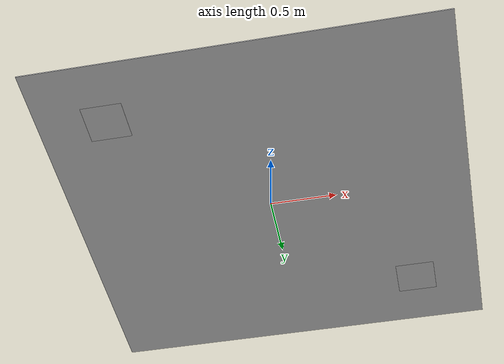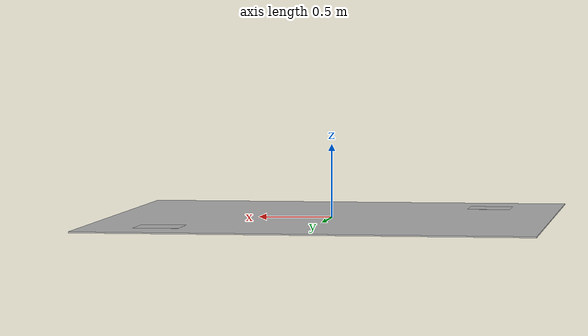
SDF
<?xml version="1.0" ?>
<sdf version="1.5">
  <model name="gi_helipad">
    <link name="link">
      <inertial>
        <mass>10.0</mass>
        <inertia>
          <ixx>0.1</ixx>
          <ixy>0</ixy>
          <ixz>0</ixz>
          <iyy>0.1</iyy>
          <iyz>0</iyz>
          <izz>0.1</izz>
        </inertia>
      </inertial>
      <collision name="collision_helipad">
        <pose>0 0 0.0 0 0 0</pose>
        <geometry>
          <box>
            <size>2.7 2.7 0.01</size>
          </box>
        </geometry>
      </collision>
      <visual name="visual_helipad">
        <pose>0 0 0.0 0 0 0</pose>
        <geometry>
          <box>
            <size>3 3 0.009</size>
          </box>
        </geometry>
        <material>
          <script>
            <uri>model://gi_helipad/materials/scripts</uri>
            <uri>model://gi_helipad/materials/textures</uri>
            <name>Helipad/Diffuse</name>
          </script>
        </material>
      </visual>
      <visual name="visual_marker3">
        <pose>1 1 0 0 0 0</pose>
        <geometry>
          <box>
            <size>0.3 0.3 0.01</size>
          </box>
        </geometry>
        <material>
          <script>
            <uri>model://gi_helipad/materials/scripts</uri>
            <uri>model://gi_helipad/materials/textures</uri>
            <name>Marker3/Diffuse</name>
          </script>
        </material>
      </visual>
      <visual name="visual_marker4">
        <pose>-1 -1 0 0 0 0</pose>
        <geometry>
          <box>
            <size>0.3 0.3 0.01</size>
          </box>
        </geometry>
        <material>
          <script>
            <uri>model://gi_helipad/materials/scripts</uri>
            <uri>model://gi_helipad/materials/textures</uri>
            <name>Marker4/Diffuse</name>
          </script>
        </material>
      </visual>
    </link>
  </model>
</sdf>
